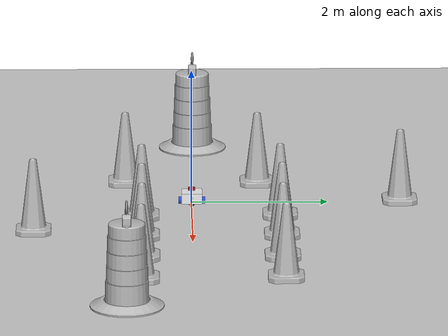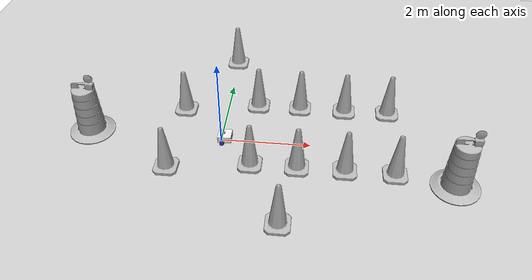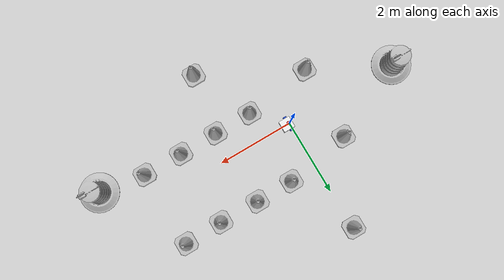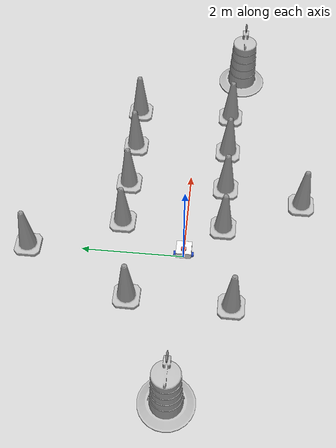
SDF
<sdf version="1.7">
 <world name="default">
  <light name="sun" type="directional">
   <pose>0 0 10 0 -0 0</pose>
   <diffuse>0.8 0.8 0.8 1</diffuse>
   <specular>0.2 0.2 0.2 1</specular>
   <attenuation>
    <range>1000</range>
    <constant>0.9</constant>
    <linear>0.01</linear>
    <quadratic>0.001</quadratic>
   </attenuation>
   <direction>-0.5 0.1 -0.9</direction>
   <spot><inner_angle>0</inner_angle><outer_angle>0</outer_angle><falloff>0</falloff></spot>
  </light>
  <model name="ground_plane">
   <static>1</static>
   <link name="link">
    <collision name="collision">
     <geometry><plane><normal>0 0 1</normal><size>100 100</size></plane></geometry>
     <surface>
      <contact><collide_bitmask>65535</collide_bitmask></contact>
      <friction><ode><mu>100</mu><mu2>50</mu2></ode></friction>
     </surface>
    </collision>
    <visual name="visual">
     <cast_shadows>0</cast_shadows>
     <geometry><plane><normal>0 0 1</normal><size>100 100</size></plane></geometry>
     <material>
      <script><uri>file://media/materials/scripts/gazebo.material</uri><name>Gazebo/Grey</name></script>
     </material>
    </visual>
   </link>
  </model>
  <gravity>0 0 -9.8</gravity>
  <magnetic_field>6e-06 2.3e-05 -4.2e-05</magnetic_field>
  <atmosphere type="adiabatic"/>
  <physics type="ode">
   <max_step_size>0.001</max_step_size>
   <real_time_factor>1</real_time_factor>
   <real_time_update_rate>1000</real_time_update_rate>
  </physics>
  <scene><ambient>0.4 0.4 0.4 1</ambient><background>0.7 0.7 0.7 1</background><shadows>1</shadows></scene>
  <audio><device>default</device></audio>
  <spherical_coordinates>
   <surface_model>EARTH_WGS84</surface_model>
   <latitude_deg>0</latitude_deg>
   <longitude_deg>0</longitude_deg>
   <elevation>0</elevation>
   <heading_deg>0</heading_deg>
  </spherical_coordinates>
  <model name="my_bot">
   <link name="base_link">
    <inertial>
     <pose>0.055714 0 0.078571 0 -0 0</pose>
     <mass>0.7</mass>
     <inertia>
      <ixx>0.0064169</ixx>
      <ixy>0</ixy>
      <ixz>0.00118929</ixz>
      <iyy>0.00745405</iyy>
      <iyz>0</iyz>
      <izz>0.00876214</izz>
     </inertia>
    </inertial>
    <collision name="base_link_fixed_joint_lump__chassis_collision">
     <pose>0.05 0 0.075 0 -0 0</pose>
     <geometry><box><size>0.3 0.3 0.15</size></box></geometry>
    </collision>
    <collision name="base_link_fixed_joint_lump__caster_wheel_collision_1">
     <pose>0.14 0 0 0 -0 0</pose>
     <geometry><sphere><radius>0.05</radius></sphere></geometry>
     <surface><friction><ode><mu>0.001</mu><mu2>0.001</mu2></ode></friction></surface>
    </collision>
    <collision name="base_link_fixed_joint_lump__laser_frame_collision_2">
     <pose>0 0 0.175 0 -0 0</pose>
     <geometry><cylinder><length>0.04</length><radius>0.05</radius></cylinder></geometry>
    </collision>
    <visual name="base_link_fixed_joint_lump__chassis_visual">
     <pose>0.05 0 0.075 0 -0 0</pose>
     <geometry><box><size>0.3 0.3 0.15</size></box></geometry>
     <material>
      <script><name>Gazebo/White</name><uri>file://media/materials/scripts/gazebo.material</uri></script>
     </material>
    </visual>
    <visual name="base_link_fixed_joint_lump__camera_link_visual_1">
     <pose>0.205 0 0.08 0 -0 0</pose>
     <geometry><box><size>0.01 0.03 0.03</size></box></geometry>
     <material>
      <script><name>Gazebo/Red</name><uri>file://media/materials/scripts/gazebo.material</uri></script>
     </material>
    </visual>
    <visual name="base_link_fixed_joint_lump__caster_wheel_visual_2">
     <pose>0.14 0 0 0 -0 0</pose>
     <geometry><sphere><radius>0.05</radius></sphere></geometry>
     <material>
      <script><name>Gazebo/Black</name><uri>file://media/materials/scripts/gazebo.material</uri></script>
     </material>
    </visual>
    <visual name="base_link_fixed_joint_lump__laser_frame_visual_3">
     <pose>0 0 0.175 0 -0 0</pose>
     <geometry><cylinder><length>0.04</length><radius>0.05</radius></cylinder></geometry>
     <material>
      <script><name>Gazebo/Red</name><uri>file://media/materials/scripts/gazebo.material</uri></script>
     </material>
    </visual>
    <sensor name="camera" type="depth">
     <visualize>1</visualize>
     <update_rate>10</update_rate>
     <camera>
      <horizontal_fov>1.089</horizontal_fov>
      <image><format>B8G8R8</format><width>640</width><height>480</height></image>
      <clip><near>0.05</near><far>8</far></clip>
     </camera>
     <plugin name="camera_controller" filename="libgazebo_ros_camera.so">
      <frame_name>camera_link_optical</frame_name>
      <min_depth>0.1</min_depth>
      <max_depth>100.0</max_depth>
     </plugin>
     <pose>0.205 0 0.08 0 -0 0</pose>
    </sensor>
    <sensor name="laser" type="ray">
     <visualize>0</visualize>
     <update_rate>10</update_rate>
     <ray>
      <scan>
       <horizontal>
        <samples>360</samples>
        <min_angle>-3.14</min_angle>
        <max_angle>3.14</max_angle>
        <resolution>1</resolution>
       </horizontal>
       <vertical><samples>1</samples><min_angle>0</min_angle><max_angle>0</max_angle></vertical>
      </scan>
      <range><min>0.3</min><max>12</max></range>
     </ray>
     <plugin name="laser_controller" filename="libgazebo_ros_ray_sensor.so">
      <ros><argument>~/out:=scan</argument></ros>
      <output_type>sensor_msgs/LaserScan</output_type>
      <frame_name>laser_frame</frame_name>
     </plugin>
     <pose>0 0 0.175 0 -0 0</pose>
    </sensor>
   </link>
   <joint name="left_wheel_joint" type="revolute">
    <pose relative_to="base_link">0 0.175 0 -1.5708 0 0</pose>
    <parent>base_link</parent>
    <child>left_wheel</child>
    <axis>
     <xyz>0 0 1</xyz>
     <limit><lower>-1e+16</lower><upper>1e+16</upper></limit>
     <dynamics><spring_reference>0</spring_reference><spring_stiffness>0</spring_stiffness></dynamics>
    </axis>
   </joint>
   <link name="left_wheel">
    <pose relative_to="left_wheel_joint">0 0 0 0 -0 0</pose>
    <inertial>
     <mass>0.1</mass>
     <inertia>
      <ixx>7.58333e-05</ixx>
      <ixy>0</ixy>
      <ixz>0</ixz>
      <iyy>7.58333e-05</iyy>
      <iyz>0</iyz>
      <izz>0.000125</izz>
     </inertia>
    </inertial>
    <collision name="left_wheel_collision"><geometry><sphere><radius>0.05</radius></sphere></geometry></collision>
    <visual name="left_wheel_visual">
     <geometry><cylinder><length>0.04</length><radius>0.05</radius></cylinder></geometry>
     <material>
      <script><name>Gazebo/Blue</name><uri>file://media/materials/scripts/gazebo.material</uri></script>
     </material>
    </visual>
   </link>
   <joint name="right_wheel_joint" type="revolute">
    <pose relative_to="base_link">0 -0.175 0 1.5708 -0 0</pose>
    <parent>base_link</parent>
    <child>right_wheel</child>
    <axis>
     <xyz>0 0 -1</xyz>
     <limit><lower>-1e+16</lower><upper>1e+16</upper></limit>
     <dynamics><spring_reference>0</spring_reference><spring_stiffness>0</spring_stiffness></dynamics>
    </axis>
   </joint>
   <link name="right_wheel">
    <pose relative_to="right_wheel_joint">0 0 0 0 -0 0</pose>
    <inertial>
     <mass>0.1</mass>
     <inertia>
      <ixx>7.58333e-05</ixx>
      <ixy>0</ixy>
      <ixz>0</ixz>
      <iyy>7.58333e-05</iyy>
      <iyz>0</iyz>
      <izz>0.000125</izz>
     </inertia>
    </inertial>
    <collision name="right_wheel_collision">
     <geometry><sphere><radius>0.05</radius></sphere></geometry>
    </collision>
    <visual name="right_wheel_visual">
     <geometry><cylinder><length>0.04</length><radius>0.05</radius></cylinder></geometry>
     <material>
      <script><name>Gazebo/Blue</name><uri>file://media/materials/scripts/gazebo.material</uri></script>
     </material>
    </visual>
   </link>
   <static>0</static>
   <plugin name="gazebo_ros2_control" filename="libgazebo_ros2_control.so">
    <parameters>/home/david/install/wag_gsz_feleves/share/wag_gsz_feleves/config/controllers.yaml</parameters>
   </plugin>
   <pose>0.040707 0.001047 0.049997 -1.6e-05 -2.1e-05 -0.003113</pose>
  </model>
  <model name="Construction Cone">
   <link name="link">
    <collision name="collision">
     <geometry>
      <mesh><scale>10 10 10</scale><uri>model://construction_cone/meshes/construction_cone.dae</uri></mesh>
     </geometry>
    </collision>
    <visual name="visual">
     <geometry>
      <mesh><scale>10 10 10</scale><uri>model://construction_cone/meshes/construction_cone.dae</uri></mesh>
     </geometry>
    </visual>
    <inertial>
     <inertia><ixx>1</ixx><ixy>0</ixy><ixz>0</ixz><iyy>1</iyy><iyz>0</iyz><izz>1</izz></inertia>
     <mass>1</mass>
    </inertial>
   </link>
   <pose>0.713888 1.2788 -4e-06 4e-06 -1e-06 0</pose>
  </model>
  <model name="Construction Cone_0">
   <link name="link">
    <collision name="collision">
     <geometry>
      <mesh><scale>10 10 10</scale><uri>model://construction_cone/meshes/construction_cone.dae</uri></mesh>
     </geometry>
    </collision>
    <visual name="visual">
     <geometry>
      <mesh><scale>10 10 10</scale><uri>model://construction_cone/meshes/construction_cone.dae</uri></mesh>
     </geometry>
    </visual>
    <inertial>
     <inertia><ixx>1</ixx><ixy>0</ixy><ixz>0</ixz><iyy>1</iyy><iyz>0</iyz><izz>1</izz></inertia>
     <mass>1</mass>
    </inertial>
   </link>
   <pose>1.70674 1.27936 -0 0 -0 0</pose>
  </model>
  <model name="Construction Cone_1">
   <link name="link">
    <collision name="collision">
     <geometry>
      <mesh><scale>10 10 10</scale><uri>model://construction_cone/meshes/construction_cone.dae</uri></mesh>
     </geometry>
    </collision>
    <visual name="visual">
     <geometry>
      <mesh><scale>10 10 10</scale><uri>model://construction_cone/meshes/construction_cone.dae</uri></mesh>
     </geometry>
    </visual>
    <inertial>
     <inertia><ixx>1</ixx><ixy>0</ixy><ixz>0</ixz><iyy>1</iyy><iyz>0</iyz><izz>1</izz></inertia>
     <mass>1</mass>
    </inertial>
   </link>
   <pose>2.74855 1.26068 -3e-06 -3e-06 -1e-06 -0</pose>
  </model>
  <model name="Construction Cone_2">
   <link name="link">
    <collision name="collision">
     <geometry>
      <mesh><scale>10 10 10</scale><uri>model://construction_cone/meshes/construction_cone.dae</uri></mesh>
     </geometry>
    </collision>
    <visual name="visual">
     <geometry>
      <mesh><scale>10 10 10</scale><uri>model://construction_cone/meshes/construction_cone.dae</uri></mesh>
     </geometry>
    </visual>
    <inertial>
     <inertia><ixx>1</ixx><ixy>0</ixy><ixz>0</ixz><iyy>1</iyy><iyz>0</iyz><izz>1</izz></inertia>
     <mass>1</mass>
    </inertial>
   </link>
   <pose>3.76246 1.27743 -2e-06 -3e-06 -1e-06 -0</pose>
  </model>
  <model name="Construction Cone_3">
   <link name="link">
    <collision name="collision">
     <geometry>
      <mesh><scale>10 10 10</scale><uri>model://construction_cone/meshes/construction_cone.dae</uri></mesh>
     </geometry>
    </collision>
    <visual name="visual">
     <geometry>
      <mesh><scale>10 10 10</scale><uri>model://construction_cone/meshes/construction_cone.dae</uri></mesh>
     </geometry>
    </visual>
    <inertial>
     <inertia><ixx>1</ixx><ixy>0</ixy><ixz>0</ixz><iyy>1</iyy><iyz>0</iyz><izz>1</izz></inertia>
     <mass>1</mass>
    </inertial>
   </link>
   <pose>0.73855 -0.731385 -8e-06 -5e-06 -0 -0</pose>
  </model>
  <model name="Construction Cone_4">
   <link name="link">
    <collision name="collision">
     <geometry>
      <mesh><scale>10 10 10</scale><uri>model://construction_cone/meshes/construction_cone.dae</uri></mesh>
     </geometry>
    </collision>
    <visual name="visual">
     <geometry>
      <mesh><scale>10 10 10</scale><uri>model://construction_cone/meshes/construction_cone.dae</uri></mesh>
     </geometry>
    </visual>
    <inertial>
     <inertia><ixx>1</ixx><ixy>0</ixy><ixz>0</ixz><iyy>1</iyy><iyz>0</iyz><izz>1</izz></inertia>
     <mass>1</mass>
    </inertial>
   </link>
   <pose>1.7384 -0.729904 -4e-06 4e-06 -1e-06 0</pose>
  </model>
  <model name="Construction Cone_5">
   <link name="link">
    <collision name="collision">
     <geometry>
      <mesh><scale>10 10 10</scale><uri>model://construction_cone/meshes/construction_cone.dae</uri></mesh>
     </geometry>
    </collision>
    <visual name="visual">
     <geometry>
      <mesh><scale>10 10 10</scale><uri>model://construction_cone/meshes/construction_cone.dae</uri></mesh>
     </geometry>
    </visual>
    <inertial>
     <inertia><ixx>1</ixx><ixy>0</ixy><ixz>0</ixz><iyy>1</iyy><iyz>0</iyz><izz>1</izz></inertia>
     <mass>1</mass>
    </inertial>
   </link>
   <pose>2.74888 -0.726703 -0 0 -1e-06 0</pose>
  </model>
  <model name="Construction Cone_6">
   <link name="link">
    <collision name="collision">
     <geometry>
      <mesh><scale>10 10 10</scale><uri>model://construction_cone/meshes/construction_cone.dae</uri></mesh>
     </geometry>
    </collision>
    <visual name="visual">
     <geometry>
      <mesh><scale>10 10 10</scale><uri>model://construction_cone/meshes/construction_cone.dae</uri></mesh>
     </geometry>
    </visual>
    <inertial>
     <inertia><ixx>1</ixx><ixy>0</ixy><ixz>0</ixz><iyy>1</iyy><iyz>0</iyz><izz>1</izz></inertia>
     <mass>1</mass>
    </inertial>
   </link>
   <pose>3.79701 -0.736579 -0 0 -0 0</pose>
  </model>
  <model name="Construction Barrel">
   <link name="link">
    <inertial>
     <pose>0 0 0.4 0 -0 0</pose>
     <mass>500</mass>
     <inertia><ixx>51.2096</ixx><iyy>51.2096</iyy><izz>25</izz><ixy>0</ixy><ixz>0</ixz><iyz>0</iyz></inertia>
    </inertial>
    <collision name="collision">
     <geometry><mesh><uri>model://construction_barrel/meshes/construction_barrel.dae</uri></mesh></geometry>
    </collision>
    <visual name="visual">
     <geometry><mesh><uri>model://construction_barrel/meshes/construction_barrel.dae</uri></mesh></geometry>
    </visual>
   </link>
   <pose>4.99991 -0.931417 -1e-06 0 5e-06 -1e-05</pose>
  </model>
  <model name="Construction Cone_7">
   <link name="link">
    <collision name="collision">
     <geometry>
      <mesh><scale>10 10 10</scale><uri>model://construction_cone/meshes/construction_cone.dae</uri></mesh>
     </geometry>
    </collision>
    <visual name="visual">
     <geometry>
      <mesh><scale>10 10 10</scale><uri>model://construction_cone/meshes/construction_cone.dae</uri></mesh>
     </geometry>
    </visual>
    <inertial>
     <inertia><ixx>1</ixx><ixy>0</ixy><ixz>0</ixz><iyy>1</iyy><iyz>0</iyz><izz>1</izz></inertia>
     <mass>1</mass>
    </inertial>
   </link>
   <pose>-1.02956 -0.976362 -0 0 -0 0</pose>
  </model>
  <model name="Construction Cone_8">
   <link name="link">
    <collision name="collision">
     <geometry>
      <mesh><scale>10 10 10</scale><uri>model://construction_cone/meshes/construction_cone.dae</uri></mesh>
     </geometry>
    </collision>
    <visual name="visual">
     <geometry>
      <mesh><scale>10 10 10</scale><uri>model://construction_cone/meshes/construction_cone.dae</uri></mesh>
     </geometry>
    </visual>
    <inertial>
     <inertia><ixx>1</ixx><ixy>0</ixy><ixz>0</ixz><iyy>1</iyy><iyz>0</iyz><izz>1</izz></inertia>
     <mass>1</mass>
    </inertial>
   </link>
   <pose>-0.995777 0.983993 -0 0 -1e-06 0</pose>
  </model>
  <model name="Construction Barrel_0">
   <link name="link">
    <inertial>
     <pose>0 0 0.4 0 -0 0</pose>
     <mass>500</mass>
     <inertia><ixx>51.2096</ixx><iyy>51.2096</iyy><izz>25</izz><ixy>0</ixy><ixz>0</ixz><iyz>0</iyz></inertia>
    </inertial>
    <collision name="collision">
     <geometry><mesh><uri>model://construction_barrel/meshes/construction_barrel.dae</uri></mesh></geometry>
    </collision>
    <visual name="visual">
     <geometry><mesh><uri>model://construction_barrel/meshes/construction_barrel.dae</uri></mesh></geometry>
    </visual>
   </link>
   <pose>-2.99509 0.040576 1e-06 2e-06 3e-06 -6e-06</pose>
  </model>
  <model name="Construction Cone_9">
   <link name="link">
    <collision name="collision">
     <geometry>
      <mesh><scale>10 10 10</scale><uri>model://construction_cone/meshes/construction_cone.dae</uri></mesh>
     </geometry>
    </collision>
    <visual name="visual">
     <geometry>
      <mesh><scale>10 10 10</scale><uri>model://construction_cone/meshes/construction_cone.dae</uri></mesh>
     </geometry>
    </visual>
    <inertial>
     <inertia><ixx>1</ixx><ixy>0</ixy><ixz>0</ixz><iyy>1</iyy><iyz>0</iyz><izz>1</izz></inertia>
     <mass>1</mass>
    </inertial>
   </link>
   <pose>-0.026901 3.05954 -0 0 -0 0</pose>
  </model>
  <model name="Construction Cone_10">
   <link name="link">
    <collision name="collision">
     <geometry>
      <mesh><scale>10 10 10</scale><uri>model://construction_cone/meshes/construction_cone.dae</uri></mesh>
     </geometry>
    </collision>
    <visual name="visual">
     <geometry>
      <mesh><scale>10 10 10</scale><uri>model://construction_cone/meshes/construction_cone.dae</uri></mesh>
     </geometry>
    </visual>
    <inertial>
     <inertia><ixx>1</ixx><ixy>0</ixy><ixz>0</ixz><iyy>1</iyy><iyz>0</iyz><izz>1</izz></inertia>
     <mass>1</mass>
    </inertial>
   </link>
   <pose>1.46487 -2.28636 -0 0 -1e-06 0</pose>
  </model>
 </world>
</sdf>
